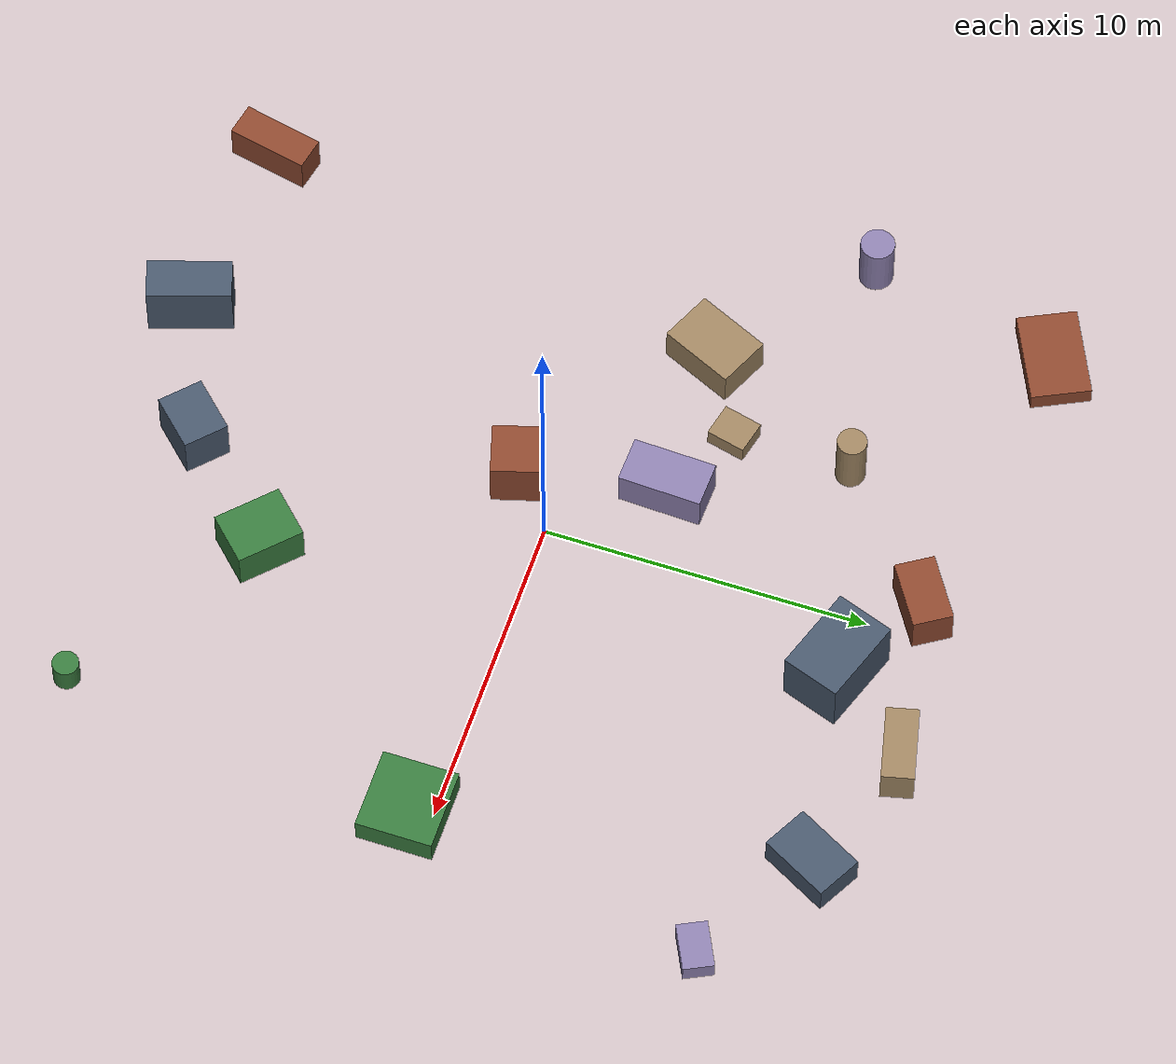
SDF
<sdf version="1.10">
 <world name="robotx_task1_uav_view">
  <gravity>0 0 -9.81</gravity>
  <physics name="physics" type="ode">
   <max_step_size>0.002</max_step_size>
   <real_time_factor>1.0</real_time_factor>
  </physics>
  <scene>
   <ambient>0.14 0.14 0.14 1.0</ambient>
   <background>0.32 0.32 0.38 1.0</background>
   <shadows>true</shadows>
   <grid>false</grid>
  </scene>
  <light name="sun" type="directional">
   <pose>0 0 300 0 0 0</pose>
   <diffuse>0.35 0.35 0.35 1.0</diffuse>
   <specular>0.12 0.12 0.12 1.0</specular>
   <direction>0.12 -0.05 -1.0</direction>
   <attenuation>
    <range>2500</range>
    <constant>0.85</constant>
    <linear>0.001</linear>
    <quadratic>0.00005</quadratic>
   </attenuation>
  </light>
  <plugin filename="gz-sim-physics-system" name="gz::sim::systems::Physics"/>
  <plugin filename="gz-sim-user-commands-system" name="gz::sim::systems::UserCommands"/>
  <plugin filename="gz-sim-scene-broadcaster-system" name="gz::sim::systems::SceneBroadcaster"/>
  <plugin filename="gz-sim-sensors-system" name="gz::sim::systems::Sensors">
   <render_engine>ogre2</render_engine>
  </plugin>
  <model name="scene_clutter_box_000">
   <static>true</static>
   <pose>-7.231 2.936 0.612 0 0 -1.995019</pose>
   <link name="link">
    <visual name="v">
     <geometry><box><size>2.380 1.684 1.184</size></box></geometry>
     <material><ambient>0.45 0.38 0.32 1.0</ambient><diffuse>0.62 0.52 0.38 1.0</diffuse></material>
    </visual>
   </link>
  </model>
  <model name="scene_clutter_box_001">
   <static>true</static>
   <pose>1.909 9.670 0.942 0 0 -0.333501</pose>
   <link name="link">
    <visual name="v">
     <geometry><box><size>2.709 1.841 1.843</size></box></geometry>
     <material><ambient>0.18 0.22 0.28 1.0</ambient><diffuse>0.28 0.34 0.42 1.0</diffuse></material>
    </visual>
   </link>
  </model>
  <model name="scene_clutter_box_002">
   <static>true</static>
   <pose>-0.921 11.432 0.664 0 0 -0.997093</pose>
   <link name="link">
    <visual name="v">
     <geometry><box><size>1.231 2.080 1.289</size></box></geometry>
     <material><ambient>0.35 0.16 0.12 1.0</ambient><diffuse>0.55 0.28 0.18 1.0</diffuse></material>
    </visual>
   </link>
  </model>
  <model name="scene_clutter_box_003">
   <static>true</static>
   <pose>10.180 -0.741 0.445 0 0 -1.571907</pose>
   <link name="link">
    <visual name="v">
     <geometry><box><size>2.336 2.486 0.850</size></box></geometry>
     <material><ambient>0.12 0.30 0.14 1.0</ambient><diffuse>0.22 0.48 0.24 1.0</diffuse></material>
    </visual>
   </link>
  </model>
  <model name="scene_clutter_box_004">
   <static>true</static>
   <pose>11.909 8.590 0.322 0 0 -1.110100</pose>
   <link name="link">
    <visual name="v">
     <geometry><box><size>0.936 1.452 0.603</size></box></geometry>
     <material><ambient>0.40 0.35 0.50 1.0</ambient><diffuse>0.55 0.50 0.68 1.0</diffuse></material>
    </visual>
   </link>
  </model>
  <model name="scene_clutter_cyl_005">
   <static>true</static>
   <pose>-4.719 8.005 0.999 0 0 -3.073008</pose>
   <link name="link">
    <visual name="v">
     <geometry><cylinder><radius>0.452</radius><length>1.897</length></cylinder></geometry>
     <material><ambient>0.45 0.38 0.32 1.0</ambient><diffuse>0.62 0.52 0.38 1.0</diffuse></material>
    </visual>
   </link>
  </model>
  <model name="scene_clutter_box_006">
   <static>true</static>
   <pose>0.338 -10.890 0.782 0 0 2.380625</pose>
   <link name="link">
    <visual name="v">
     <geometry><box><size>1.418 1.778 1.524</size></box></geometry>
     <material><ambient>0.18 0.22 0.28 1.0</ambient><diffuse>0.28 0.34 0.42 1.0</diffuse></material>
    </visual>
   </link>
  </model>
  <model name="scene_clutter_box_007">
   <static>true</static>
   <pose>-9.795 -11.945 0.632 0 0 1.360626</pose>
   <link name="link">
    <visual name="v">
     <geometry><box><size>2.505 1.006 1.224</size></box></geometry>
     <material><ambient>0.35 0.16 0.12 1.0</ambient><diffuse>0.55 0.28 0.18 1.0</diffuse></material>
    </visual>
   </link>
  </model>
  <model name="scene_clutter_cyl_008">
   <static>true</static>
   <pose>9.153 -11.670 0.489 0 0 0.251826</pose>
   <link name="link">
    <visual name="v">
     <geometry><cylinder><radius>0.401</radius><length>0.878</length></cylinder></geometry>
     <material><ambient>0.12 0.30 0.14 1.0</ambient><diffuse>0.22 0.48 0.24 1.0</diffuse></material>
    </visual>
   </link>
  </model>
  <model name="scene_clutter_box_009">
   <static>true</static>
   <pose>-2.394 3.025 0.634 0 0 1.534369</pose>
   <link name="link">
    <visual name="v">
     <geometry><box><size>2.564 1.409 1.228</size></box></geometry>
     <material><ambient>0.40 0.35 0.50 1.0</ambient><diffuse>0.55 0.50 0.68 1.0</diffuse></material>
    </visual>
   </link>
  </model>
  <model name="scene_clutter_box_010">
   <static>true</static>
   <pose>4.100 12.279 0.635 0 0 0.237755</pose>
   <link name="link">
    <visual name="v">
     <geometry><box><size>2.288 0.990 1.231</size></box></geometry>
     <material><ambient>0.45 0.38 0.32 1.0</ambient><diffuse>0.62 0.52 0.38 1.0</diffuse></material>
    </visual>
   </link>
  </model>
  <model name="scene_clutter_box_011">
   <static>true</static>
   <pose>-3.830 -12.513 0.962 0 0 1.892529</pose>
   <link name="link">
    <visual name="v">
     <geometry><box><size>2.572 1.232 1.883</size></box></geometry>
     <material><ambient>0.18 0.22 0.28 1.0</ambient><diffuse>0.28 0.34 0.42 1.0</diffuse></material>
    </visual>
   </link>
  </model>
  <model name="scene_clutter_box_012">
   <static>true</static>
   <pose>-10.285 12.623 0.321 0 0 0.453992</pose>
   <link name="link">
    <visual name="v">
     <geometry><box><size>2.800 1.841 0.603</size></box></geometry>
     <material><ambient>0.35 0.16 0.12 1.0</ambient><diffuse>0.55 0.28 0.18 1.0</diffuse></material>
    </visual>
   </link>
  </model>
  <model name="scene_clutter_box_013">
   <static>true</static>
   <pose>3.213 -7.789 0.688 0 0 -2.342042</pose>
   <link name="link">
    <visual name="v">
     <geometry><box><size>1.660 2.109 1.337</size></box></geometry>
     <material><ambient>0.12 0.30 0.14 1.0</ambient><diffuse>0.22 0.48 0.24 1.0</diffuse></material>
    </visual>
   </link>
  </model>
  <model name="scene_clutter_cyl_014">
   <static>true</static>
   <pose>-11.584 6.646 0.939 0 0 -1.827556</pose>
   <link name="link">
    <visual name="v">
     <geometry><cylinder><radius>0.522</radius><length>1.777</length></cylinder></geometry>
     <material><ambient>0.40 0.35 0.50 1.0</ambient><diffuse>0.55 0.50 0.68 1.0</diffuse></material>
    </visual>
   </link>
  </model>
  <model name="scene_clutter_box_015">
   <static>true</static>
   <pose>-4.798 4.343 0.316 0 0 1.334532</pose>
   <link name="link">
    <visual name="v">
     <geometry><box><size>1.216 1.041 0.592</size></box></geometry>
     <material><ambient>0.45 0.38 0.32 1.0</ambient><diffuse>0.62 0.52 0.38 1.0</diffuse></material>
    </visual>
   </link>
  </model>
  <model name="scene_clutter_box_016">
   <static>true</static>
   <pose>8.175 10.902 0.501 0 0 -2.063958</pose>
   <link name="link">
    <visual name="v">
     <geometry><box><size>2.279 1.493 0.962</size></box></geometry>
     <material><ambient>0.18 0.22 0.28 1.0</ambient><diffuse>0.28 0.34 0.42 1.0</diffuse></material>
    </visual>
   </link>
  </model>
  <model name="scene_clutter_box_017">
   <static>true</static>
   <pose>-1.470 -1.341 0.863 0 0 -1.287894</pose>
   <link name="link">
    <visual name="v">
     <geometry><box><size>1.553 1.566 1.686</size></box></geometry>
     <material><ambient>0.35 0.16 0.12 1.0</ambient><diffuse>0.55 0.28 0.18 1.0</diffuse></material>
    </visual>
   </link>
  </model>
  <model name="uav_dataset_camera">
   <static>false</static>
   <pose>0 0 26 0 0 0</pose>
   <plugin filename="librobotx_overhead_motion_plugin.dylib" name="robotx::OverheadMotionPlugin">
    <radius_x_m>9.93032</radius_x_m>
    <radius_y_m>9.12564</radius_y_m>
    <angular_speed_rad_s>0.078699</angular_speed_rad_s>
    <phase_rad>2.039308</phase_rad>
    <z_wobble_m>0.07093</z_wobble_m>
    <z_wobble_hz>0.07888</z_wobble_hz>
    <z_wobble_phase_rad>5.598722</z_wobble_phase_rad>
   </plugin>
   <link name="camera_link">
    <gravity>false</gravity>
    <sensor name="top_down_rgb" type="camera">
     <always_on>true</always_on>
     <update_rate>20</update_rate>
     <pose>0 0 0 0 1.57079632679 0</pose>
     <camera>
      <horizontal_fov>1.05</horizontal_fov>
      <image><width>1920</width><height>1080</height><format>R8G8B8</format></image>
      <clip><near>0.2</near><far>600</far></clip>
     </camera>
     <topic>/robotx/uav/camera/image_raw</topic>
     <visualize>true</visualize>
    </sensor>
   </link>
  </model>
 </world>
</sdf>
